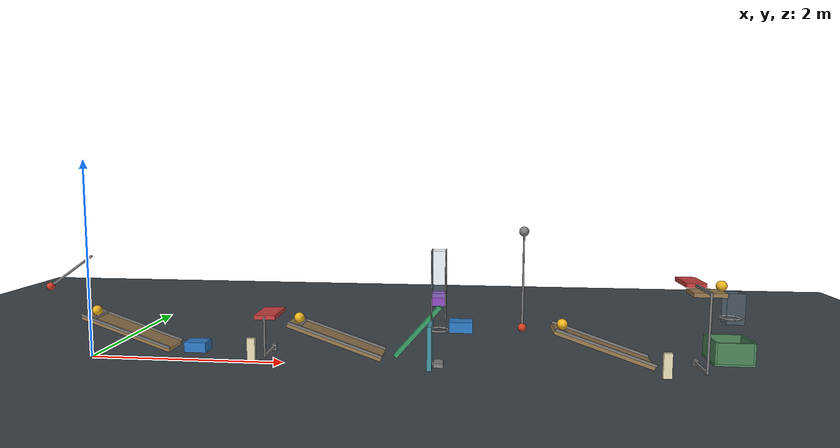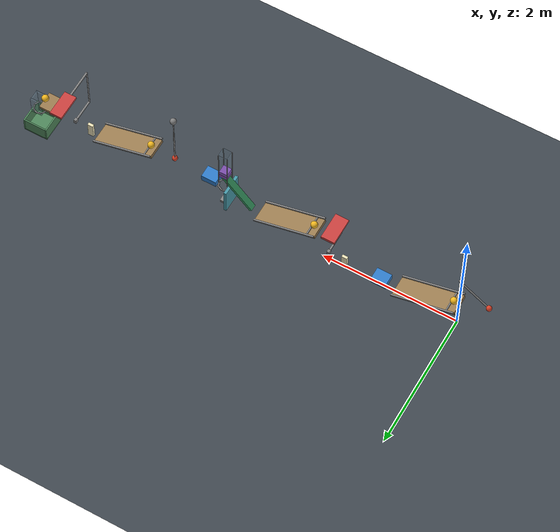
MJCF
<mujoco model="chain_reaction_revision">
  <compiler angle="degree" autolimits="true" inertiafromgeom="true"/>
  <option timestep="0.002" gravity="0 0 -9.81" integrator="implicitfast" solver="Newton" iterations="100" cone="elliptic"/>
  <size njmax="4000" nconmax="1000"/>

  <worldbody>
    <light name="main_light" pos="3 -3 7" dir="0 0 -1" directional="true"/>
    <camera name="overview" pos="3.2 -7.5 4" xyaxes="1 0 0 0 0.38 0.925"/>
    <geom name="floor" type="plane" pos="0 0 0" size="12 5 .1" friction=".68 .005 .0001" solref=".008 .6901" rgba=".24 .27 .30 1"/>

    <body name="pendulum1" pos="0.040896 0 1.034316" euler="0 55 0">
      <joint name="pendulum1_hinge" type="hinge" axis="0 -1 0" range="0 110" damping=".04" solreflimit=".004 1"/>
      <geom name="pendulum1_rod" type="capsule" fromto="0 0 0 0 0 -.50" size=".012" mass=".06" friction=".68 .005 .0001" solref=".008 .6901"/>
      <geom name="pendulum1_bob" type="sphere" pos="0 0 -.55" size=".04" mass=".34" friction=".68 .005 .0001" solref=".008 .6901" rgba=".85 .25 .15 1"/>
    </body>

    <body name="ramp1" pos="0.442610 0 0.285735" euler="0 19 0">
      <geom name="ramp1_surface" type="box" size=".475 .15 .02" friction=".68 .005 .0001" solref=".008 .6901" rgba=".60 .48 .31 1"/>
      <geom name="ramp1_left_rail" type="box" pos="0 .162 .031" size=".475 .012 .011" friction=".68 .005 .0001" solref=".008 .6901"/>
      <geom name="ramp1_right_rail" type="box" pos="0 -.162 .031" size=".475 .012 .011" friction=".68 .005 .0001" solref=".008 .6901"/>
      <geom name="ramp1_retainer" type="box" pos="-.36 0 .028" size=".01 .15 .008" friction=".68 .005 .0001" solref=".008 .6901"/>
    </body>

    <body name="ball1" pos="0.080896 0 0.484316">
      <freejoint name="ball1_free"/>
      <geom name="ball1_sphere" type="sphere" size=".05" mass=".20" friction=".68 .005 .0001" solref=".008 .6901" rgba=".95 .72 .12 1"/>
    </body>

    <body name="cart1" pos="1.128243 0 0.15">
      <joint name="cart1_slide" type="slide" axis="1 0 0" range="0 .48" damping=".20" solreflimit=".004 1"/>
      <geom name="cart1_chassis" type="box" size=".11 .09 .05" mass=".50" friction=".68 .005 .0001" solref=".008 .6901" rgba=".18 .48 .78 1"/>
    </body>

    <body name="domino1" pos="1.678243 0 0.12">
      <freejoint name="domino1_free"/>
      <geom name="domino1_tile" type="box" size=".04 .02 .12" mass=".25" friction=".68 .005 .0001" solref=".008 .6901" rgba=".92 .88 .72 1"/>
    </body>

    <body name="flap1" pos="1.918243 -0.35 0.53">
      <joint name="flap1_hinge" type="hinge" axis="0 .173648 -.984808" range="0 65" damping=".04" solreflimit=".004 1"/>
      <geom name="flap1_panel" type="box" pos="0 .20 0" size=".10 .20 .02" mass=".27" friction=".68 .005 .0001" solref=".008 .6901" rgba=".78 .25 .24 1"/>
      <geom name="flap1_trigger_arm" type="box" pos="0 .175 -.37" size=".012 .175 .012" mass=".015" friction=".68 .005 .0001" solref=".008 .6901"/>
      <geom name="flap1_spindle" type="capsule" fromto="0 0 -.37 0 0 0" size=".01" mass=".015" friction=".68 .005 .0001" solref=".008 .6901"/>
      <geom name="flap1_trigger_paddle" type="box" pos="0 .35 -.37" size=".02 .025 .03" density="0" friction=".68 .005 .0001" solref=".008 .6901"/>
    </body>

    <body name="ramp2" pos="2.559957 -0.10 0.285735" euler="0 19 0">
      <geom name="ramp2_surface" type="box" size=".475 .15 .02" friction=".68 .005 .0001" solref=".008 .6901" rgba=".60 .48 .31 1"/>
      <geom name="ramp2_left_rail" type="box" pos="0 .162 .031" size=".475 .012 .011" friction=".68 .005 .0001" solref=".008 .6901"/>
      <geom name="ramp2_right_rail" type="box" pos="0 -.162 .031" size=".475 .012 .011" friction=".68 .005 .0001" solref=".008 .6901"/>
      <geom name="ramp2_retainer" type="box" pos="-.36 0 .028" size=".01 .15 .008" friction=".68 .005 .0001" solref=".008 .6901"/>
    </body>

    <body name="ball2" pos="2.198243 -0.10 0.484316">
      <freejoint name="ball2_free"/>
      <geom name="ball2_sphere" type="sphere" size=".05" mass=".20" friction=".68 .005 .0001" solref=".008 .6901" rgba=".95 .72 .12 1"/>
    </body>

    <!-- Block loading opposes the seesaw spring at its initial lower stop. -->
    <body name="seesaw1" pos="3.343903 -0.10 0.381598" euler="0 -49 0">
      <joint name="seesaw1_hinge" type="hinge" axis="0 -1 0" range="0 40" damping=".04" stiffness=".50" springref="40" solreflimit=".004 1"/>
      <geom name="seesaw1_beam" type="box" size=".325 .05 .02" mass=".55" friction=".68 .005 .0001" solref=".008 .6901" rgba=".22 .62 .40 1"/>
    </body>

    <body name="block1" pos="3.542028 -0.10 0.70">
      <freejoint name="block1_free"/>
      <geom name="block1_cube" type="box" size=".06 .06 .06" mass=".35" friction=".68 .005 .0001" solref=".008 .6901" rgba=".56 .30 .76 1"/>
    </body>

    <!-- Plate bottoms are above the beam's complete swept envelope.
         Corner posts are outside the beam's 0.10 m width. -->
    <body name="block1_guide" pos="3.542028 -0.10 0">
      <geom name="block1_guide_left" type="box" pos="-.0655 0 .94" size=".005 .0605 .22" priority="1" friction=".68 .005 .0001" solref=".004 .6901" solimp=".95 .99 .0005" rgba=".5 .65 .75 .25"/>
      <geom name="block1_guide_right" type="box" pos=".0655 0 .94" size=".005 .0605 .22" priority="1" friction=".68 .005 .0001" solref=".004 .6901" solimp=".95 .99 .0005" rgba=".5 .65 .75 .25"/>
      <geom name="block1_guide_front" type="box" pos="0 -.0655 .94" size=".0605 .005 .22" priority="1" friction=".68 .005 .0001" solref=".004 .6901" solimp=".95 .99 .0005" rgba=".5 .65 .75 .25"/>
      <geom name="block1_guide_back" type="box" pos="0 .0655 .94" size=".0605 .005 .22" priority="1" friction=".68 .005 .0001" solref=".004 .6901" solimp=".95 .99 .0005" rgba=".5 .65 .75 .25"/>
      <geom name="block1_guide_post1" type="capsule" fromto="-.065 -.065 .50 -.065 -.065 1.16" size=".0065" priority="1" friction=".68 .005 .0001" solref=".004 .6901" solimp=".95 .99 .0005"/>
      <geom name="block1_guide_post2" type="capsule" fromto="-.065 .065 .50 -.065 .065 1.16" size=".0065" priority="1" friction=".68 .005 .0001" solref=".004 .6901" solimp=".95 .99 .0005"/>
      <geom name="block1_guide_post3" type="capsule" fromto=".065 -.065 .50 .065 -.065 1.16" size=".0065" priority="1" friction=".68 .005 .0001" solref=".004 .6901" solimp=".95 .99 .0005"/>
      <geom name="block1_guide_post4" type="capsule" fromto=".065 .065 .50 .065 .065 1.16" size=".0065" priority="1" friction=".68 .005 .0001" solref=".004 .6901" solimp=".95 .99 .0005"/>
    </body>

    <body name="ring1" pos="3.542028 -0.10 0.40">
      <geom name="ring1_s01" type="capsule" fromto=".097416 0 0 .068883 .068883 0" size=".01" friction=".68 .005 .0001" solref=".008 .6901"/>
      <geom name="ring1_s02" type="capsule" fromto=".068883 .068883 0 0 .097416 0" size=".01" friction=".68 .005 .0001" solref=".008 .6901"/>
      <geom name="ring1_s03" type="capsule" fromto="0 .097416 0 -.068883 .068883 0" size=".01" friction=".68 .005 .0001" solref=".008 .6901"/>
      <geom name="ring1_s04" type="capsule" fromto="-.068883 .068883 0 -.097416 0 0" size=".01" friction=".68 .005 .0001" solref=".008 .6901"/>
      <geom name="ring1_s05" type="capsule" fromto="-.097416 0 0 -.068883 -.068883 0" size=".01" friction=".68 .005 .0001" solref=".008 .6901"/>
      <geom name="ring1_s06" type="capsule" fromto="-.068883 -.068883 0 0 -.097416 0" size=".01" friction=".68 .005 .0001" solref=".008 .6901"/>
      <geom name="ring1_s07" type="capsule" fromto="0 -.097416 0 .068883 -.068883 0" size=".01" friction=".68 .005 .0001" solref=".008 .6901"/>
      <geom name="ring1_s08" type="capsule" fromto=".068883 -.068883 0 .097416 0 0" size=".01" friction=".68 .005 .0001" solref=".008 .6901"/>
    </body>

    <body name="door1" pos="3.461028 -0.10 0.04">
      <joint name="door1_hinge" type="hinge" axis="0 1 0" range="0 70" damping=".04" solreflimit=".004 1"/>
      <geom name="door1_panel" type="box" pos="0 0 .21" size=".02 .16 .21" mass=".45" friction=".68 .005 .0001" solref=".008 .6901" rgba=".27 .59 .65 1"/>
      <geom name="door1_trigger_foot" type="box" pos=".081 0 .03" size=".045 .08 .02" density="0" friction=".68 .005 .0001" solref=".008 .6901"/>
      <geom name="door1_foot_link" type="box" pos=".025 0 .03" size=".025 .03 .01" density="0" friction=".68 .005 .0001" solref=".008 .6901"/>
    </body>

    <body name="cart2" pos="3.751028 -0.10 0.444005">
      <joint name="cart2_slide" type="slide" axis="1 0 0" range="0 .49" damping=".20" solreflimit=".004 1"/>
      <geom name="cart2_chassis" type="box" size=".11 .09 .05" mass=".50" friction=".68 .005 .0001" solref=".008 .6901" rgba=".18 .48 .78 1"/>
    </body>

    <!-- Hinge-to-bob length is 0.50 m; total assembly mass is 0.35 kg.
         The auxiliary counterweight assists positive displacement. -->
    <body name="pendulum2" pos="4.321028 -0.10 0.944005">
      <joint name="pendulum2_hinge" type="hinge" axis="0 -1 0" range="0 38" damping=".04" solreflimit=".004 1"/>
      <geom name="pendulum2_rod" type="capsule" fromto="0 0 0 0 0 -.50" size=".01" mass=".02" friction=".68 .005 .0001" solref=".008 .6901"/>
      <geom name="pendulum2_bob" type="sphere" pos="0 0 -.50" size=".04" mass=".13" friction=".68 .005 .0001" solref=".008 .6901" rgba=".85 .25 .15 1"/>
      <geom name="pendulum2_counterweight_stem" type="capsule" fromto="0 0 0 0 0 .40" size=".008" density="0" friction=".68 .005 .0001" solref=".008 .6901"/>
      <geom name="pendulum2_counterweight" type="sphere" pos="0 0 .40" size=".045" mass=".20" friction=".68 .005 .0001" solref=".008 .6901"/>
    </body>

    <body name="ramp3" pos="5.050573 -0.10 0.285735" euler="0 19 0">
      <geom name="ramp3_surface" type="box" size=".475 .15 .02" friction=".68 .005 .0001" solref=".008 .6901" rgba=".60 .48 .31 1"/>
      <geom name="ramp3_left_rail" type="box" pos="0 .162 .031" size=".475 .012 .011" friction=".68 .005 .0001" solref=".008 .6901"/>
      <geom name="ramp3_right_rail" type="box" pos="0 -.162 .031" size=".475 .012 .011" friction=".68 .005 .0001" solref=".008 .6901"/>
      <geom name="ramp3_retainer" type="box" pos="-.366661 0 .025" size=".01 .15 .005" friction=".68 .005 .0001" solref=".008 .6901"/>
    </body>

    <body name="ball3" pos="4.688859 -0.10 0.484316">
      <freejoint name="ball3_free"/>
      <geom name="ball3_sphere" type="sphere" size=".05" mass=".20" friction=".68 .005 .0001" solref=".008 .6901" rgba=".95 .72 .12 1"/>
    </body>

    <body name="domino2" pos="5.646206 -0.10 0.12">
      <freejoint name="domino2_free"/>
      <geom name="domino2_tile" type="box" size=".04 .02 .12" mass=".25" friction=".68 .005 .0001" solref=".008 .6901" rgba=".92 .88 .72 1"/>
    </body>

    <body name="flap2" pos="5.886206 -0.45 0.86">
      <joint name="flap2_hinge" type="hinge" axis="0 .173648 -.984808" range="0 60" damping=".04" solreflimit=".004 1"/>
      <geom name="flap2_panel" type="box" pos="0 .60 0" size=".09 .19 .02" mass=".255" friction=".68 .005 .0001" solref=".008 .6901" rgba=".78 .25 .24 1"/>
      <geom name="flap2_upper_boom" type="box" pos="0 .30 0" size=".012 .30 .012" density="0" friction=".68 .005 .0001" solref=".008 .6901"/>
      <geom name="flap2_trigger_arm" type="box" pos="0 .175 -.70" size=".012 .175 .012" mass=".012" friction=".68 .005 .0001" solref=".008 .6901"/>
      <geom name="flap2_spindle" type="capsule" fromto="0 0 -.70 0 0 0" size=".01" mass=".013" friction=".68 .005 .0001" solref=".008 .6901"/>
      <geom name="flap2_trigger_paddle" type="box" pos="0 .35 -.70" size=".02 .025 .03" density="0" friction=".68 .005 .0001" solref=".008 .6901"/>
    </body>

    <body name="shelf1" pos="6.036206 0.15 0.76">
      <geom name="shelf1_surface" type="box" size=".15 .125 .02" friction=".68 .005 .0001" solref=".008 .6901" rgba=".60 .48 .31 1"/>
    </body>

    <body name="ball4" pos="6.166206 0.15 0.83">
      <freejoint name="ball4_free"/>
      <geom name="ball4_sphere" type="sphere" size=".05" mass=".20" friction=".68 .005 .0001" solref=".008 .6901" rgba=".95 .72 .12 1"/>
    </body>

    <body name="ball4_dropguide" pos="6.261206 0.15 0">
      <geom name="ball4_dropguide_back" type="box" pos=".085 0 .625" size=".01 .075 .145" friction=".68 .005 .0001" solref=".008 .6901" rgba=".5 .65 .75 .25"/>
      <geom name="ball4_dropguide_left" type="box" pos=".02 .07 .625" size=".08 .01 .145" friction=".68 .005 .0001" solref=".008 .6901" rgba=".5 .65 .75 .25"/>
      <geom name="ball4_dropguide_right" type="box" pos=".02 -.07 .625" size=".08 .01 .145" friction=".68 .005 .0001" solref=".008 .6901" rgba=".5 .65 .75 .25"/>
    </body>

    <body name="ring2" pos="6.261206 0.15 0.53">
      <geom name="ring2_s01" type="capsule" fromto=".097416 0 0 .068883 .068883 0" size=".01" friction=".68 .005 .0001" solref=".008 .6901"/>
      <geom name="ring2_s02" type="capsule" fromto=".068883 .068883 0 0 .097416 0" size=".01" friction=".68 .005 .0001" solref=".008 .6901"/>
      <geom name="ring2_s03" type="capsule" fromto="0 .097416 0 -.068883 .068883 0" size=".01" friction=".68 .005 .0001" solref=".008 .6901"/>
      <geom name="ring2_s04" type="capsule" fromto="-.068883 .068883 0 -.097416 0 0" size=".01" friction=".68 .005 .0001" solref=".008 .6901"/>
      <geom name="ring2_s05" type="capsule" fromto="-.097416 0 0 -.068883 -.068883 0" size=".01" friction=".68 .005 .0001" solref=".008 .6901"/>
      <geom name="ring2_s06" type="capsule" fromto="-.068883 -.068883 0 0 -.097416 0" size=".01" friction=".68 .005 .0001" solref=".008 .6901"/>
      <geom name="ring2_s07" type="capsule" fromto="0 -.097416 0 .068883 -.068883 0" size=".01" friction=".68 .005 .0001" solref=".008 .6901"/>
      <geom name="ring2_s08" type="capsule" fromto=".068883 -.068883 0 .097416 0 0" size=".01" friction=".68 .005 .0001" solref=".008 .6901"/>
    </body>

    <!-- Inner footprint 0.32 by 0.32 m; wall height 0.20 m; thickness 0.02 m.
         Bottom top z=0.13 gives a resting ball center at z=0.18. -->
    <body name="box1" pos="6.261206 0.15 0">
      <geom name="box1_bottom" type="box" pos="0 0 .12" size=".18 .18 .01" friction=".68 .005 .0001" solref=".008 .6901" rgba=".30 .52 .35 1"/>
      <geom name="box1_wall_left" type="box" pos="-.17 0 .23" size=".01 .18 .10" friction=".68 .005 .0001" solref=".008 .6901" rgba=".30 .52 .35 1"/>
      <geom name="box1_wall_right" type="box" pos=".17 0 .23" size=".01 .18 .10" friction=".68 .005 .0001" solref=".008 .6901" rgba=".30 .52 .35 1"/>
      <geom name="box1_wall_front" type="box" pos="0 -.17 .23" size=".16 .01 .10" friction=".68 .005 .0001" solref=".008 .6901" rgba=".30 .52 .35 1"/>
      <geom name="box1_wall_back" type="box" pos="0 .17 .23" size=".16 .01 .10" friction=".68 .005 .0001" solref=".008 .6901" rgba=".30 .52 .35 1"/>
    </body>
  </worldbody>

  <keyframe>
    <key name="start" time="0"/>
  </keyframe>
</mujoco>
